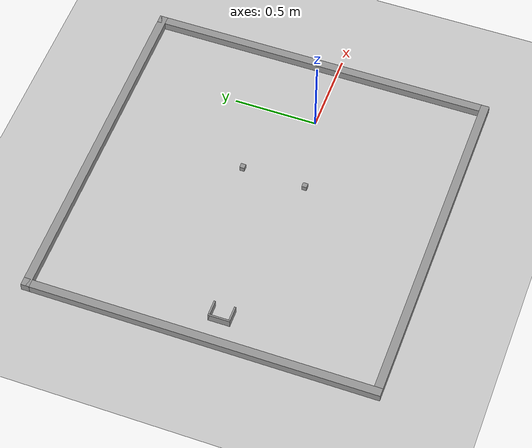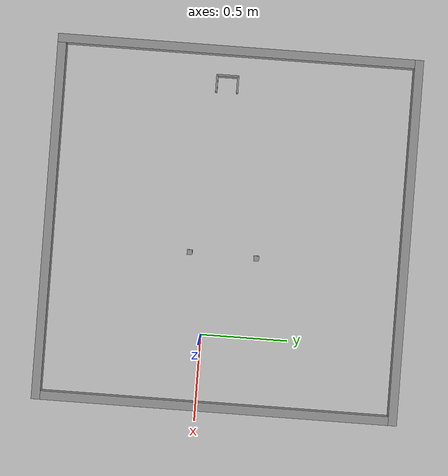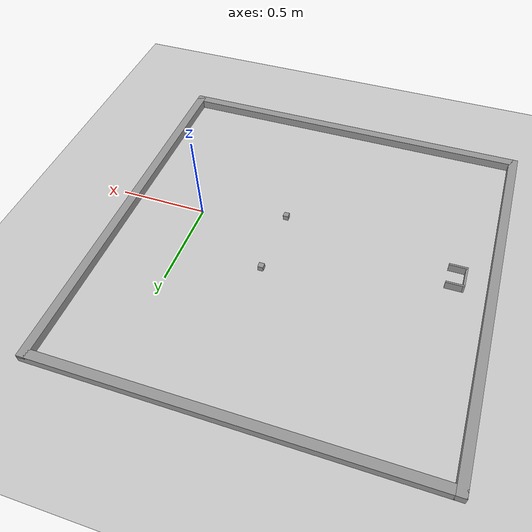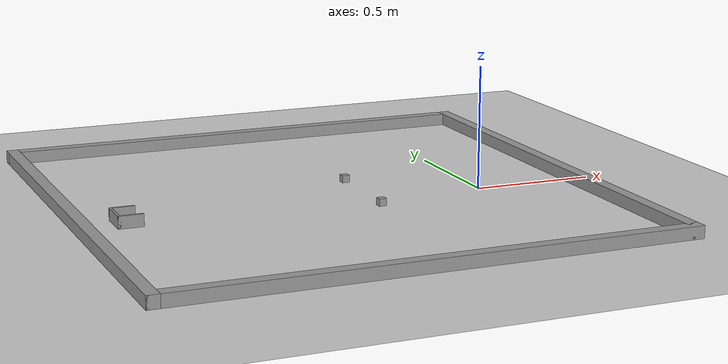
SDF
<sdf version="1.7">
 <world name="default">
  <light name="sun" type="directional">
   <pose>0 0 10 0 -0 0</pose>
   <diffuse>0.8 0.8 0.8 1</diffuse>
   <specular>0.2 0.2 0.2 1</specular>
   <attenuation>
    <range>1000</range>
    <constant>0.9</constant>
    <linear>0.01</linear>
    <quadratic>0.001</quadratic>
   </attenuation>
   <direction>-0.5 0.1 -0.9</direction>
   <spot><inner_angle>0</inner_angle><outer_angle>0</outer_angle><falloff>0</falloff></spot>
  </light>
  <model name="ground_plane">
   <static>1</static>
   <link name="link">
    <collision name="collision">
     <geometry><plane><normal>0 0 1</normal><size>100 100</size></plane></geometry>
     <surface>
      <contact><collide_bitmask>65535</collide_bitmask></contact>
      <friction><ode><mu>100</mu><mu2>50</mu2></ode></friction>
     </surface>
    </collision>
    <visual name="visual">
     <cast_shadows>0</cast_shadows>
     <geometry><plane><normal>0 0 1</normal><size>100 100</size></plane></geometry>
     <material>
      <script><uri>file://media/materials/scripts/gazebo.material</uri><name>Gazebo/Grey</name></script>
     </material>
    </visual>
   </link>
  </model>
  <gravity>0 0 -9.8</gravity>
  <magnetic_field>6e-06 2.3e-05 -4.2e-05</magnetic_field>
  <atmosphere type="adiabatic"/>
  <physics type="ode">
   <max_step_size>0.001</max_step_size>
   <real_time_factor>1</real_time_factor>
   <real_time_update_rate>1000</real_time_update_rate>
  </physics>
  <scene><ambient>0.4 0.4 0.4 1</ambient><background>0.7 0.7 0.7 1</background><shadows>1</shadows></scene>
  <spherical_coordinates>
   <surface_model>EARTH_WGS84</surface_model>
   <latitude_deg>0</latitude_deg>
   <longitude_deg>0</longitude_deg>
   <elevation>0</elevation>
   <heading_deg>0</heading_deg>
  </spherical_coordinates>
  <model name="arena">
   <pose>-0.243265 0.8463 0 0 -0 0</pose>
   <link name="Wall_0">
    <collision name="Wall_0_Collision">
     <geometry><box><size>2.1 0.05 0.05</size></box></geometry>
     <pose>0 0 0.025 0 -0 0</pose>
    </collision>
    <visual name="Wall_0_Visual">
     <pose>0 0 0.025 0 -0 0</pose>
     <geometry><box><size>2.1 0.05 0.05</size></box></geometry>
     <material>
      <script><uri>file://media/materials/scripts/gazebo.material</uri><name>Gazebo/Grey</name></script>
      <ambient>1 1 1 1</ambient>
     </material>
     <meta><layer>0</layer></meta>
    </visual>
    <pose>-0.3725 0.2875 0 0 -0 0</pose>
   </link>
   <link name="Wall_2">
    <collision name="Wall_2_Collision">
     <geometry><box><size>2.1 0.05 0.05</size></box></geometry>
     <pose>0 0 0.025 0 -0 0</pose>
    </collision>
    <visual name="Wall_2_Visual">
     <pose>0 0 0.025 0 -0 0</pose>
     <geometry><box><size>2.1 0.05 0.05</size></box></geometry>
     <material>
      <script><uri>file://media/materials/scripts/gazebo.material</uri><name>Gazebo/Grey</name></script>
      <ambient>1 1 1 1</ambient>
     </material>
     <meta><layer>0</layer></meta>
    </visual>
    <pose>-1.3975 -0.7375 0 0 -0 -1.5708</pose>
   </link>
   <link name="Wall_4">
    <collision name="Wall_4_Collision">
     <geometry><box><size>2.1 0.05 0.05</size></box></geometry>
     <pose>0 0 0.025 0 -0 0</pose>
    </collision>
    <visual name="Wall_4_Visual">
     <pose>0 0 0.025 0 -0 0</pose>
     <geometry><box><size>2.1 0.05 0.05</size></box></geometry>
     <material>
      <script><uri>file://media/materials/scripts/gazebo.material</uri><name>Gazebo/Grey</name></script>
      <ambient>1 1 1 1</ambient>
     </material>
     <meta><layer>0</layer></meta>
    </visual>
    <pose>-0.3725 -1.7625 0 0 -0 0</pose>
   </link>
   <link name="Wall_6">
    <collision name="Wall_6_Collision">
     <geometry><box><size>2.1 0.05 0.05</size></box></geometry>
     <pose>0 0 0.025 0 -0 0</pose>
    </collision>
    <visual name="Wall_6_Visual">
     <pose>0 0 0.025 0 -0 0</pose>
     <geometry><box><size>2.1 0.05 0.05</size></box></geometry>
     <material>
      <script><uri>file://media/materials/scripts/gazebo.material</uri><name>Gazebo/Grey</name></script>
      <ambient>1 1 1 1</ambient>
     </material>
     <meta><layer>0</layer></meta>
    </visual>
    <pose>0.6525 -0.7375 0 0 -0 1.5708</pose>
   </link>
   <static>1</static>
  </model>
  <model name="separator_0">
   <pose>-1.45028 0.045 0 0 0 -1.56742</pose>
   <link name="Wall_20">
    <collision name="Wall_20_Collision">
     <geometry><box><size>0.13 0.01 0.05</size></box></geometry>
     <pose>0 0 0.025 0 -0 0</pose>
    </collision>
    <visual name="Wall_20_Visual">
     <pose>0 0 0.025 0 -0 0</pose>
     <geometry><box><size>0.13 0.01 0.05</size></box></geometry>
     <material>
      <script><uri>file://media/materials/scripts/gazebo.material</uri><name>Gazebo/Grey</name></script>
      <ambient>1 1 1 1</ambient>
     </material>
     <meta><layer>0</layer></meta>
    </visual>
    <pose>0 -0.045 0 0 -0 0</pose>
   </link>
   <link name="Wall_23">
    <collision name="Wall_23_Collision">
     <geometry><box><size>0.1 0.01 0.05</size></box></geometry>
     <pose>0 0 0.025 0 -0 0</pose>
    </collision>
    <visual name="Wall_23_Visual">
     <pose>0 0 0.025 0 -0 0</pose>
     <geometry><box><size>0.1 0.01 0.05</size></box></geometry>
     <material>
      <script><uri>file://media/materials/scripts/gazebo.material</uri><name>Gazebo/Grey</name></script>
      <ambient>1 1 1 1</ambient>
     </material>
     <meta><layer>0</layer></meta>
    </visual>
    <pose>-0.06 -0 0 0 -0 1.5708</pose>
   </link>
   <link name="Wall_25">
    <collision name="Wall_25_Collision">
     <geometry><box><size>0.1 0.01 0.05</size></box></geometry>
     <pose>0 0 0.025 0 -0 0</pose>
    </collision>
    <visual name="Wall_25_Visual">
     <pose>0 0 0.025 0 -0 0</pose>
     <geometry><box><size>0.1 0.01 0.05</size></box></geometry>
     <material>
      <script><uri>file://media/materials/scripts/gazebo.material</uri><name>Gazebo/Grey</name></script>
      <ambient>1 1 1 1</ambient>
     </material>
     <meta><layer>0</layer></meta>
    </visual>
    <pose>0.06 -0 0 0 -0 1.5708</pose>
   </link>
   <static>1</static>
  </model>
  <model name="box_turtle">
   <link name="link">
    <inertial>
     <mass>0.01</mass>
     <inertia>
      <ixx>0.166667</ixx>
      <ixy>0</ixy>
      <ixz>0</ixz>
      <iyy>0.166667</iyy>
      <iyz>0</iyz>
      <izz>0.166667</izz>
     </inertia>
    </inertial>
    <kinematic>1</kinematic>
    <visual name="visual">
     <geometry><box><size>0.03 0.03 0.03</size></box></geometry>
     <material>
      <script><name>Gazebo/Grey</name><uri>file://media/materials/scripts/gazebo.material</uri></script>
      <shader type="pixel"><normal_map>__default__</normal_map></shader>
      <ambient>0.3 0.3 0.3 1</ambient>
      <diffuse>0.7 0.7 0.7 1</diffuse>
      <specular>0.01 0.01 0.01 1</specular>
      <emissive>0 0 0 1</emissive>
     </material>
    </visual>
    <collision name="collision_1">
     <geometry><box><size>0.03 0.03 0.03</size></box></geometry>
     <surface>
      <friction>
       <ode><mu>1</mu><mu2>1</mu2><fdir1>0 0 0</fdir1><slip1>0</slip1><slip2>0</slip2></ode>
       <torsional>
        <coefficient>1</coefficient>
        <patch_radius>0</patch_radius>
        <surface_radius>0</surface_radius>
        <use_patch_radius>1</use_patch_radius>
        <ode><slip>0</slip></ode>
       </torsional>
      </friction>
      <bounce><restitution_coefficient>0</restitution_coefficient><threshold>1e+06</threshold></bounce>
      <contact>
       <collide_without_contact>0</collide_without_contact>
       <collide_without_contact_bitmask>1</collide_without_contact_bitmask>
       <collide_bitmask>1</collide_bitmask>
       <ode>
        <soft_cfm>0</soft_cfm>
        <soft_erp>0.2</soft_erp>
        <kp>1e+13</kp>
        <kd>1</kd>
        <max_vel>0.01</max_vel>
        <min_depth>0</min_depth>
       </ode>
       <bullet>
        <split_impulse>1</split_impulse>
        <split_impulse_penetration_threshold>-0.01</split_impulse_penetration_threshold>
        <soft_cfm>0</soft_cfm>
        <soft_erp>0.2</soft_erp>
        <kp>1e+13</kp>
        <kd>1</kd>
       </bullet>
      </contact>
     </surface>
    </collision>
    <collision name="collision">
     <max_contacts>0</max_contacts>
     <geometry><box><size>0.03 0.03 0.03</size></box></geometry>
     <surface>
      <friction>
       <ode><mu>1</mu><mu2>1</mu2><fdir1>0 0 0</fdir1><slip1>0</slip1><slip2>0</slip2></ode>
       <torsional>
        <coefficient>1</coefficient>
        <patch_radius>0</patch_radius>
        <surface_radius>0</surface_radius>
        <use_patch_radius>1</use_patch_radius>
        <ode><slip>0</slip></ode>
       </torsional>
      </friction>
      <bounce><restitution_coefficient>0</restitution_coefficient><threshold>1e+06</threshold></bounce>
      <contact>
       <collide_without_contact>0</collide_without_contact>
       <collide_without_contact_bitmask>1</collide_without_contact_bitmask>
       <collide_bitmask>1</collide_bitmask>
       <ode>
        <soft_cfm>0</soft_cfm>
        <soft_erp>0.2</soft_erp>
        <kp>1e+13</kp>
        <kd>1</kd>
        <max_vel>0.01</max_vel>
        <min_depth>0</min_depth>
       </ode>
       <bullet>
        <split_impulse>1</split_impulse>
        <split_impulse_penetration_threshold>-0.01</split_impulse_penetration_threshold>
        <soft_cfm>0</soft_cfm>
        <soft_erp>0.2</soft_erp>
        <kp>1e+13</kp>
        <kd>1</kd>
       </bullet>
      </contact>
     </surface>
    </collision>
   </link>
   <static>0</static>
   <pose>-0.463159 0.287311 0.019771 0 -0 0</pose>
  </model>
  <model name="box_turtle_clone">
   <link name="link">
    <inertial>
     <mass>0.01</mass>
     <inertia>
      <ixx>0.166667</ixx>
      <ixy>0</ixy>
      <ixz>0</ixz>
      <iyy>0.166667</iyy>
      <iyz>0</iyz>
      <izz>0.166667</izz>
     </inertia>
    </inertial>
    <kinematic>1</kinematic>
    <visual name="visual">
     <geometry><box><size>0.03 0.03 0.03</size></box></geometry>
     <material>
      <script><name>Gazebo/Grey</name><uri>file://media/materials/scripts/gazebo.material</uri></script>
      <shader type="pixel"><normal_map>__default__</normal_map></shader>
      <ambient>0.3 0.3 0.3 1</ambient>
      <diffuse>0.7 0.7 0.7 1</diffuse>
      <specular>0.01 0.01 0.01 1</specular>
      <emissive>0 0 0 1</emissive>
     </material>
    </visual>
    <collision name="collision_1">
     <geometry><box><size>0.03 0.03 0.03</size></box></geometry>
     <surface>
      <friction>
       <ode><mu>1</mu><mu2>1</mu2><fdir1>0 0 0</fdir1><slip1>0</slip1><slip2>0</slip2></ode>
       <torsional>
        <coefficient>1</coefficient>
        <patch_radius>0</patch_radius>
        <surface_radius>0</surface_radius>
        <use_patch_radius>1</use_patch_radius>
        <ode><slip>0</slip></ode>
       </torsional>
      </friction>
      <bounce><restitution_coefficient>0</restitution_coefficient><threshold>1e+06</threshold></bounce>
      <contact>
       <collide_without_contact>0</collide_without_contact>
       <collide_without_contact_bitmask>1</collide_without_contact_bitmask>
       <collide_bitmask>1</collide_bitmask>
       <ode>
        <soft_cfm>0</soft_cfm>
        <soft_erp>0.2</soft_erp>
        <kp>1e+13</kp>
        <kd>1</kd>
        <max_vel>0.01</max_vel>
        <min_depth>0</min_depth>
       </ode>
       <bullet>
        <split_impulse>1</split_impulse>
        <split_impulse_penetration_threshold>-0.01</split_impulse_penetration_threshold>
        <soft_cfm>0</soft_cfm>
        <soft_erp>0.2</soft_erp>
        <kp>1e+13</kp>
        <kd>1</kd>
       </bullet>
      </contact>
     </surface>
    </collision>
    <collision name="collision">
     <max_contacts>0</max_contacts>
     <geometry><box><size>0.03 0.03 0.03</size></box></geometry>
     <surface>
      <friction>
       <ode><mu>1</mu><mu2>1</mu2><fdir1>0 0 0</fdir1><slip1>0</slip1><slip2>0</slip2></ode>
       <torsional>
        <coefficient>1</coefficient>
        <patch_radius>0</patch_radius>
        <surface_radius>0</surface_radius>
        <use_patch_radius>1</use_patch_radius>
        <ode><slip>0</slip></ode>
       </torsional>
      </friction>
      <bounce><restitution_coefficient>0</restitution_coefficient><threshold>1e+06</threshold></bounce>
      <contact>
       <collide_without_contact>0</collide_without_contact>
       <collide_without_contact_bitmask>1</collide_without_contact_bitmask>
       <collide_bitmask>1</collide_bitmask>
       <ode>
        <soft_cfm>0</soft_cfm>
        <soft_erp>0.2</soft_erp>
        <kp>1e+13</kp>
        <kd>1</kd>
        <max_vel>0.01</max_vel>
        <min_depth>0</min_depth>
       </ode>
       <bullet>
        <split_impulse>1</split_impulse>
        <split_impulse_penetration_threshold>-0.01</split_impulse_penetration_threshold>
        <soft_cfm>0</soft_cfm>
        <soft_erp>0.2</soft_erp>
        <kp>1e+13</kp>
        <kd>1</kd>
       </bullet>
      </contact>
     </surface>
    </collision>
   </link>
   <static>0</static>
   <pose>-0.470904 -0.097678 0.019771 0 -0 0</pose>
  </model>
 </world>
</sdf>
